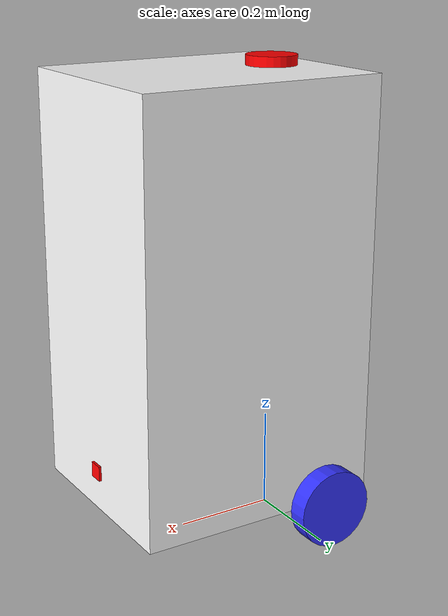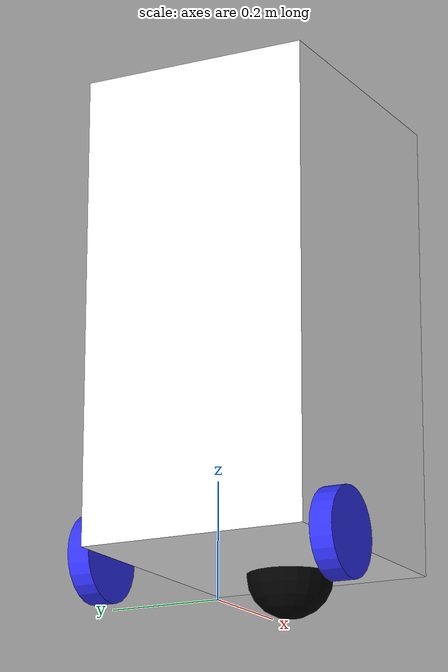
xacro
<?xml version="1.0"?>
<robot xmlns:xacro="http://www.ros.org/wiki/xacro"  name="robot">

    <xacro:include filename="robot_core.xacro" />

    <xacro:include filename="gazebo_control.xacro" />

    <xacro:include filename="depth_camera.xacro" />

    <xacro:include filename="lidar.xacro" />

<joint name="base_footprint_joint" type="fixed">
    <parent link="base_footprint"/>
    <child link="base_link"/>
    <origin xyz="0 0 0.09" rpy="0 0 0" />
  </joint>

  <link name="base_footprint"/>

  <joint name="imu_joint" type="fixed">
    <parent link="base_link"/>
    <child link="imu_link"/>
    <origin xyz="0 0.06 0.02" rpy="0 0 0"/>
  </joint>

  <link name="imu_link"/>
</robot>

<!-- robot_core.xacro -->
<robot xmlns:xacro="http://www.ros.org/wiki/xacro" >

    <xacro:include filename="inertial_macros.xacro"/>

    <material name="white">
        <color rgba="1 1 1 1" />
    </material>

    <material name="orange">
        <color rgba="1 0.3 0.1 1"/>
    </material>

    <material name="blue">
        <color rgba="0.2 0.2 1 1"/>
    </material>

    <material name="black">
        <color rgba="0 0 0 1"/>
    </material>

    <material name="red">
        <color rgba="1 0 0 1"/>
    </material>

    <!-- BASE LINK -->

    <link name="base_link">

    </link>

    <!-- CHASSIS LINK -->

    <joint name="chassis_joint" type="fixed">
        <parent link="base_link"/>
        <child link="chassis"/>
        <origin xyz="-0.1 0 0"/>
    </joint>

    <link name="chassis">
        <visual>
            <origin xyz="0.245 0 0.415"/>
            <geometry>
                <box size="0.49 0.41 0.83"/>
            </geometry>
            <material name="white"/>
        </visual>
        <collision>
            <origin xyz="0.245 0 0.415"/>
            <geometry>
                <box size="0.49 0.41 0.83"/>
            </geometry>
        </collision>
        <xacro:inertial_box mass="0.5" x="0.49" y="0.41" z="0.83">
            <origin xyz="0.245 0 0.415" rpy="0 0 0"/>
        </xacro:inertial_box>
    </link>

    <gazebo reference="chassis">
        <material>Gazebo/White</material>
    </gazebo>

    <!-- LEFT WHEEL LINK -->

    <joint name="left_wheel_joint" type="continuous">
        <parent link="base_link"/>
        <child link="left_wheel"/>
        <origin xyz="0 0.225 0" rpy="-${pi/2} 0 0" />
        <axis xyz="0 0 1"/>
    </joint>

    <link name="left_wheel">
        <visual>
            <geometry>
                <cylinder radius="0.0775" length="0.04"/>
            </geometry>
            <material name="blue"/>
        </visual>
        <collision>
            <geometry>
                <cylinder radius="0.0775" length="0.04"/>
            </geometry>
        </collision>
        <xacro:inertial_cylinder mass="0.1" length="0.04" radius="0.0775">
            <origin xyz="0 0 0" rpy="0 0 0"/>
        </xacro:inertial_cylinder>
    </link>

    <gazebo reference="left_wheel">
        <material>Gazebo/Blue</material>
    </gazebo>

    <!-- RIGHT WHEEL LINK -->

    <joint name="right_wheel_joint" type="continuous">
        <parent link="base_link"/>
        <child link="right_wheel"/>
        <origin xyz="0 -0.225 0" rpy="${pi/2} 0 0" />
        <axis xyz="0 0 -1"/>
    </joint>

    <link name="right_wheel">
        <visual>
            <geometry>
                <cylinder radius="0.0775" length="0.04"/>
            </geometry>
            <material name="blue"/>
        </visual>
        <collision>
            <geometry>
                <cylinder radius="0.0775" length="0.04"/>
            </geometry>
        </collision>
        <xacro:inertial_cylinder mass="0.1" length="0.04" radius="0.0775">
            <origin xyz="0 0 0" rpy="0 0 0"/>
        </xacro:inertial_cylinder>
    </link>

    <gazebo reference="right_wheel">
        <material>Gazebo/Blue</material>
    </gazebo>

    <!-- CASTER WHEEL LINK -->

    <joint name="caster_wheel_joint" type="fixed">
        <parent link="chassis"/>
        <child link="caster_wheel"/>
        <origin xyz="0.3675 0 0"/>
    </joint>

    <link name="caster_wheel">
        <visual>
            <geometry>
                <sphere radius="0.0775"/>
            </geometry>
            <material name="black"/>
        </visual>
        <collision>
            <geometry>
                <sphere radius="0.0775"/>
            </geometry>
        </collision>
        <xacro:inertial_sphere mass="0.1" radius="0.0775">
            <origin xyz="0 0 0" rpy="0 0 0"/>
        </xacro:inertial_sphere>
    </link>

    <gazebo reference="caster_wheel">
        <material>Gazebo/Black</material>
        <mu1 value="0.001"/>
        <mu2 value="0.001"/>
    </gazebo>

</robot>

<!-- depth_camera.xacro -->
<robot xmlns:xacro="http://www.ros.org/wiki/xacro" >

    <joint name="camera_joint" type="fixed">
        <parent link="chassis"/>
        <child link="camera_link"/>
        <origin xyz="0.49 0 0.08" rpy="0 0 0"/>
    </joint>

    <link name="camera_link">
        <visual>
            <geometry>
                <box size="0.010 0.03 0.03"/>
            </geometry>
            <material name="red"/>
        </visual>
    </link>

    <joint name="camera_optical_joint" type="fixed">
        <parent link="camera_link"/>
        <child link="camera_link_optical"/>
        <origin xyz="0 0 0" rpy="${-pi/2} 0 ${-pi/2}"/>
    </joint>

    <link name="camera_link_optical"></link>

    <gazebo reference="camera_link">
        <material>Gazebo/Red</material>

        <sensor name="camera" type="depth">
            <pose> 0 0 0 0 0 0 </pose>
            <visualize>true</visualize>
            <update_rate>10</update_rate>
            <camera>
                <horizontal_fov>1.089</horizontal_fov>
                <image>
                    <format>B8G8R8</format>
                    <width>640</width>
                    <height>480</height>
                </image>
                <clip>
                    <near>0.05</near>
                    <far>8.0</far>
                </clip>
            </camera>
            <plugin name="camera_controller" filename="libgazebo_ros_camera.so">
                <frame_name>camera_link_optical</frame_name>
                <min_depth>0.1</min_depth>
                <max_depth>100.0</max_depth>
            </plugin>
        </sensor>
    </gazebo>

</robot>

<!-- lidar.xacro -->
<robot xmlns:xacro="http://www.ros.org/wiki/xacro" >

    <joint name="laser_joint" type="fixed">
        <parent link="chassis"/>
        <child link="laser_frame"/>
        <origin xyz="0.1 0 0.83" rpy="0 0 0"/>
    </joint>

    <link name="laser_frame">
        <visual>
            <geometry>
                <cylinder radius="0.05" length="0.04"/>
            </geometry>
            <material name="red"/>
        </visual>
        <visual>
            <origin xyz="0 0 -0.05"/>
            <geometry>
                <cylinder radius="0.01" length="0.1"/>
            </geometry>
            <material name="red"/>
        </visual>
        <collision>
            <geometry>
                <cylinder radius="0.05" length="0.04"/>
            </geometry>
        </collision>
        <xacro:inertial_cylinder mass="0.1" length="0.04" radius="0.05">
            <origin xyz="0 0 0" rpy="0 0 0"/>
        </xacro:inertial_cylinder>
    </link>

<gazebo reference="laser_frame">
        <material>Gazebo/Red</material>

        <sensor name="laser" type="ray">
            <pose> 0 0 0 0 0 0 </pose>
            <visualize>true</visualize>
            <update_rate>10</update_rate>
            <ray>
                <scan>
                    <horizontal>
                        <samples>360</samples>
                        <min_angle>-3.14</min_angle>
                        <max_angle>3.14</max_angle>
                    </horizontal>
                </scan>
                <range>
                    <min>0.3</min>
                    <max>12</max>
                </range>
            </ray>
            <plugin name="laser_controller" filename="libgazebo_ros_laser.so">
                <frame_name>laser_scan</frame_name>
                <topicName>/witress_bot/laser_scan</topicName>
            </plugin>
        </sensor>
    </gazebo>

</robot>
